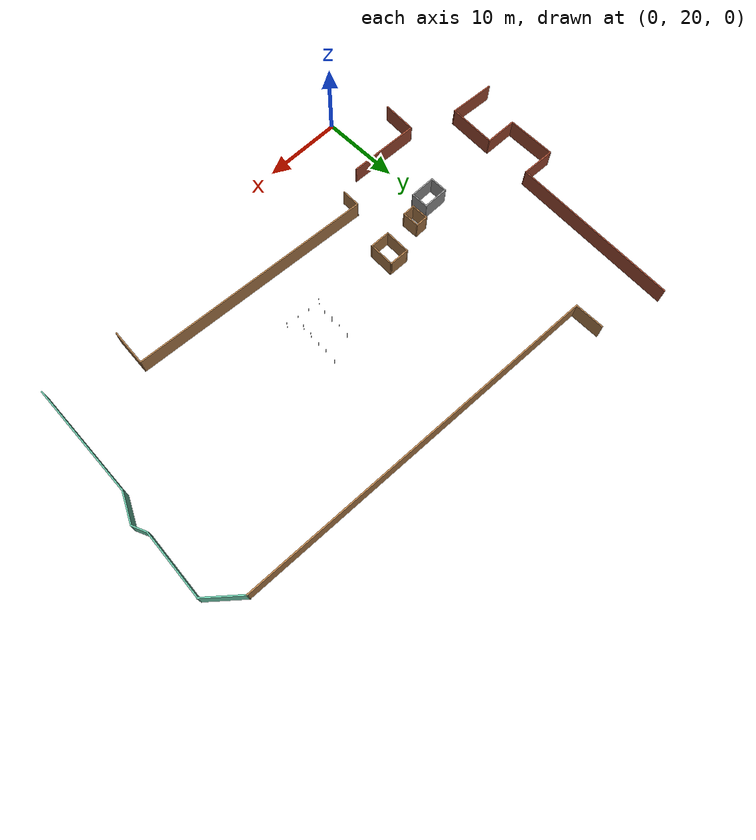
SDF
<sdf version="1.4">
 <world name="default">
  <model name="pole_0">
   <static>1</static>
   <pose>18.3 37.7 0.0 0.0 0.0 0.0</pose>
   <link name="link">
    <inertial>
     <mass>1</mass>
     <inertia><ixz>0</ixz><ixx>1</ixx><ixy>0</ixy><izz>1</izz><iyy>1</iyy><iyz>0</iyz></inertia>
    </inertial>
    <collision name="collision">
     <geometry><cylinder><length>1.27</length><radius>0.025</radius></cylinder></geometry>
    </collision>
    <visual name="visual">
     <geometry><cylinder><length>1.27</length><radius>0.025</radius></cylinder></geometry>
     <material>
      <script><uri>file://media/materials/scripts/gazebo.material</uri><name>Gazebo/Grey</name></script>
     </material>
    </visual>
    <velocity_decay><linear>0</linear><angular>0</angular></velocity_decay>
   </link>
  </model>
  <model name="pole_1">
   <static>1</static>
   <pose>21.3 37.5 0.0 0.0 0.0 0.0</pose>
   <link name="link">
    <inertial>
     <mass>1</mass>
     <inertia><ixz>0</ixz><ixx>1</ixx><ixy>0</ixy><izz>1</izz><iyy>1</iyy><iyz>0</iyz></inertia>
    </inertial>
    <collision name="collision">
     <geometry><cylinder><length>1.27</length><radius>0.025</radius></cylinder></geometry>
    </collision>
    <visual name="visual">
     <geometry><cylinder><length>1.27</length><radius>0.025</radius></cylinder></geometry>
     <material>
      <script><uri>file://media/materials/scripts/gazebo.material</uri><name>Gazebo/Grey</name></script>
     </material>
    </visual>
    <velocity_decay><linear>0</linear><angular>0</angular></velocity_decay>
   </link>
  </model>
  <model name="pole_9">
   <static>1</static>
   <pose>18.4 39.0 0.0 0.0 0.0 0.0</pose>
   <link name="link">
    <inertial>
     <mass>1</mass>
     <inertia><ixz>0</ixz><ixx>1</ixx><ixy>0</ixy><izz>1</izz><iyy>1</iyy><iyz>0</iyz></inertia>
    </inertial>
    <collision name="collision">
     <geometry><cylinder><length>1.27</length><radius>0.025</radius></cylinder></geometry>
    </collision>
    <visual name="visual">
     <geometry><cylinder><length>1.27</length><radius>0.025</radius></cylinder></geometry>
     <material>
      <script><uri>file://media/materials/scripts/gazebo.material</uri><name>Gazebo/Grey</name></script>
     </material>
    </visual>
    <velocity_decay><linear>0</linear><angular>0</angular></velocity_decay>
   </link>
  </model>
  <model name="pole_10">
   <static>1</static>
   <pose>21.4 38.8 0.0 0.0 0.0 0.0</pose>
   <link name="link">
    <inertial>
     <mass>1</mass>
     <inertia><ixz>0</ixz><ixx>1</ixx><ixy>0</ixy><izz>1</izz><iyy>1</iyy><iyz>0</iyz></inertia>
    </inertial>
    <collision name="collision">
     <geometry><cylinder><length>1.27</length><radius>0.025</radius></cylinder></geometry>
    </collision>
    <visual name="visual">
     <geometry><cylinder><length>1.27</length><radius>0.025</radius></cylinder></geometry>
     <material>
      <script><uri>file://media/materials/scripts/gazebo.material</uri><name>Gazebo/Grey</name></script>
     </material>
    </visual>
    <velocity_decay><linear>0</linear><angular>0</angular></velocity_decay>
   </link>
  </model>
  <model name="pole_18">
   <static>1</static>
   <pose>18.5 40.3 0.0 0.0 0.0 0.0</pose>
   <link name="link">
    <inertial>
     <mass>1</mass>
     <inertia><ixz>0</ixz><ixx>1</ixx><ixy>0</ixy><izz>1</izz><iyy>1</iyy><iyz>0</iyz></inertia>
    </inertial>
    <collision name="collision">
     <geometry><cylinder><length>1.27</length><radius>0.025</radius></cylinder></geometry>
    </collision>
    <visual name="visual">
     <geometry><cylinder><length>1.27</length><radius>0.025</radius></cylinder></geometry>
     <material>
      <script><uri>file://media/materials/scripts/gazebo.material</uri><name>Gazebo/Grey</name></script>
     </material>
    </visual>
    <velocity_decay><linear>0</linear><angular>0</angular></velocity_decay>
   </link>
  </model>
  <model name="pole_19">
   <static>1</static>
   <pose>21.5 40.1 0.0 0.0 0.0 0.0</pose>
   <link name="link">
    <inertial>
     <mass>1</mass>
     <inertia><ixz>0</ixz><ixx>1</ixx><ixy>0</ixy><izz>1</izz><iyy>1</iyy><iyz>0</iyz></inertia>
    </inertial>
    <collision name="collision">
     <geometry><cylinder><length>1.27</length><radius>0.025</radius></cylinder></geometry>
    </collision>
    <visual name="visual">
     <geometry><cylinder><length>1.27</length><radius>0.025</radius></cylinder></geometry>
     <material>
      <script><uri>file://media/materials/scripts/gazebo.material</uri><name>Gazebo/Grey</name></script>
     </material>
    </visual>
    <velocity_decay><linear>0</linear><angular>0</angular></velocity_decay>
   </link>
  </model>
  <model name="pole_27">
   <static>1</static>
   <pose>18.6 41.6 0.0 0.0 0.0 0.0</pose>
   <link name="link">
    <inertial>
     <mass>1</mass>
     <inertia><ixz>0</ixz><ixx>1</ixx><ixy>0</ixy><izz>1</izz><iyy>1</iyy><iyz>0</iyz></inertia>
    </inertial>
    <collision name="collision">
     <geometry><cylinder><length>1.27</length><radius>0.025</radius></cylinder></geometry>
    </collision>
    <visual name="visual">
     <geometry><cylinder><length>1.27</length><radius>0.025</radius></cylinder></geometry>
     <material>
      <script><uri>file://media/materials/scripts/gazebo.material</uri><name>Gazebo/Grey</name></script>
     </material>
    </visual>
    <velocity_decay><linear>0</linear><angular>0</angular></velocity_decay>
   </link>
  </model>
  <model name="pole_28">
   <static>1</static>
   <pose>21.6 41.4 0.0 0.0 0.0 0.0</pose>
   <link name="link">
    <inertial>
     <mass>1</mass>
     <inertia><ixz>0</ixz><ixx>1</ixx><ixy>0</ixy><izz>1</izz><iyy>1</iyy><iyz>0</iyz></inertia>
    </inertial>
    <collision name="collision">
     <geometry><cylinder><length>1.27</length><radius>0.025</radius></cylinder></geometry>
    </collision>
    <visual name="visual">
     <geometry><cylinder><length>1.27</length><radius>0.025</radius></cylinder></geometry>
     <material>
      <script><uri>file://media/materials/scripts/gazebo.material</uri><name>Gazebo/Grey</name></script>
     </material>
    </visual>
    <velocity_decay><linear>0</linear><angular>0</angular></velocity_decay>
   </link>
  </model>
  <model name="pole_36">
   <static>1</static>
   <pose>18.7 43.0 0.0 0.0 0.0 0.0</pose>
   <link name="link">
    <inertial>
     <mass>1</mass>
     <inertia><ixz>0</ixz><ixx>1</ixx><ixy>0</ixy><izz>1</izz><iyy>1</iyy><iyz>0</iyz></inertia>
    </inertial>
    <collision name="collision">
     <geometry><cylinder><length>1.27</length><radius>0.025</radius></cylinder></geometry>
    </collision>
    <visual name="visual">
     <geometry><cylinder><length>1.27</length><radius>0.025</radius></cylinder></geometry>
     <material>
      <script><uri>file://media/materials/scripts/gazebo.material</uri><name>Gazebo/Grey</name></script>
     </material>
    </visual>
    <velocity_decay><linear>0</linear><angular>0</angular></velocity_decay>
   </link>
  </model>
  <model name="pole_37">
   <static>1</static>
   <pose>21.7 42.8 0.0 0.0 0.0 0.0</pose>
   <link name="link">
    <inertial>
     <mass>1</mass>
     <inertia><ixz>0</ixz><ixx>1</ixx><ixy>0</ixy><izz>1</izz><iyy>1</iyy><iyz>0</iyz></inertia>
    </inertial>
    <collision name="collision">
     <geometry><cylinder><length>1.27</length><radius>0.025</radius></cylinder></geometry>
    </collision>
    <visual name="visual">
     <geometry><cylinder><length>1.27</length><radius>0.025</radius></cylinder></geometry>
     <material>
      <script><uri>file://media/materials/scripts/gazebo.material</uri><name>Gazebo/Grey</name></script>
     </material>
    </visual>
    <velocity_decay><linear>0</linear><angular>0</angular></velocity_decay>
   </link>
  </model>
  <model name="arch_0">
   <static>1</static>
   <pose>17.9 36.4 0.0 0.0 0.0 0.0</pose>
   <link name="link">
    <inertial>
     <mass>1</mass>
     <inertia><ixz>0</ixz><ixx>1</ixx><ixy>0</ixy><izz>1</izz><iyy>1</iyy><iyz>0</iyz></inertia>
    </inertial>
    <collision name="collision">
     <geometry><cylinder><length>1.37</length><radius>0.0175</radius></cylinder></geometry>
    </collision>
    <visual name="visual">
     <geometry><cylinder><length>1.37</length><radius>0.0175</radius></cylinder></geometry>
     <material>
      <script><uri>file://media/materials/scripts/gazebo.material</uri><name>Gazebo/Grey</name></script>
     </material>
    </visual>
    <velocity_decay><linear>0</linear><angular>0</angular></velocity_decay>
   </link>
  </model>
  <model name="arch_3">
   <static>1</static>
   <pose>19.4 36.3 0.0 0.0 0.0 0.0</pose>
   <link name="link">
    <inertial>
     <mass>1</mass>
     <inertia><ixz>0</ixz><ixx>1</ixx><ixy>0</ixy><izz>1</izz><iyy>1</iyy><iyz>0</iyz></inertia>
    </inertial>
    <collision name="collision">
     <geometry><cylinder><length>1.37</length><radius>0.0175</radius></cylinder></geometry>
    </collision>
    <visual name="visual">
     <geometry><cylinder><length>1.37</length><radius>0.0175</radius></cylinder></geometry>
     <material>
      <script><uri>file://media/materials/scripts/gazebo.material</uri><name>Gazebo/Grey</name></script>
     </material>
    </visual>
    <velocity_decay><linear>0</linear><angular>0</angular></velocity_decay>
   </link>
  </model>
  <model name="arch_6">
   <static>1</static>
   <pose>20.9 36.2 0.0 0.0 0.0 0.0</pose>
   <link name="link">
    <inertial>
     <mass>1</mass>
     <inertia><ixz>0</ixz><ixx>1</ixx><ixy>0</ixy><izz>1</izz><iyy>1</iyy><iyz>0</iyz></inertia>
    </inertial>
    <collision name="collision">
     <geometry><cylinder><length>1.37</length><radius>0.0175</radius></cylinder></geometry>
    </collision>
    <visual name="visual">
     <geometry><cylinder><length>1.37</length><radius>0.0175</radius></cylinder></geometry>
     <material>
      <script><uri>file://media/materials/scripts/gazebo.material</uri><name>Gazebo/Grey</name></script>
     </material>
    </visual>
    <velocity_decay><linear>0</linear><angular>0</angular></velocity_decay>
   </link>
  </model>
  <model name="arch_9">
   <static>1</static>
   <pose>22.4 36.0 0.0 0.0 0.0 0.0</pose>
   <link name="link">
    <inertial>
     <mass>1</mass>
     <inertia><ixz>0</ixz><ixx>1</ixx><ixy>0</ixy><izz>1</izz><iyy>1</iyy><iyz>0</iyz></inertia>
    </inertial>
    <collision name="collision">
     <geometry><cylinder><length>1.37</length><radius>0.0175</radius></cylinder></geometry>
    </collision>
    <visual name="visual">
     <geometry><cylinder><length>1.37</length><radius>0.0175</radius></cylinder></geometry>
     <material>
      <script><uri>file://media/materials/scripts/gazebo.material</uri><name>Gazebo/Grey</name></script>
     </material>
    </visual>
    <velocity_decay><linear>0</linear><angular>0</angular></velocity_decay>
   </link>
  </model>
  <model name="riseholme_real_map_part">
   <static>1</static>
   <pose>15.76 43.63 0 0 -0 0</pose>
   <link name="Wall_0">
    <collision name="Wall_0_Collision">
     <geometry><box><size>21.0554 0.15 2.5</size></box></geometry>
     <pose>0 0 1.25 0 -0 0</pose>
    </collision>
    <visual name="Wall_0_Visual">
     <geometry><box><size>21.0554 0.15 2.5</size></box></geometry>
     <meta><layer>0</layer></meta>
     <material>
      <script><uri>file://media/materials/scripts/gazebo.material</uri><name>Gazebo/Bricks</name></script>
      <ambient>1 1 1 1</ambient>
     </material>
     <pose>0 0 1.25 0 -0 0</pose>
    </visual>
    <pose>-25.311 9.07614 0 0 -0 -1.63226</pose>
   </link>
   <link name="Wall_1">
    <collision name="Wall_1_Collision">
     <geometry><box><size>4.32868 0.15 2.5</size></box></geometry>
     <pose>0 0 1.25 0 -0 0</pose>
    </collision>
    <visual name="Wall_1_Visual">
     <geometry><box><size>4.32868 0.15 2.5</size></box></geometry>
     <meta><layer>0</layer></meta>
     <material>
      <script><uri>file://media/materials/scripts/gazebo.material</uri><name>Gazebo/Bricks</name></script>
      <ambient>1 1 1 1</ambient>
     </material>
     <pose>0 0 1.25 0 -0 0</pose>
    </visual>
    <pose>-28.0397 -1.24984 0 0 -0 3.09036</pose>
   </link>
   <link name="Wall_11">
    <collision name="Wall_11_Collision">
     <geometry><box><size>3.68612 0.15 2.5</size></box></geometry>
     <pose>0 0 1.25 0 -0 0</pose>
    </collision>
    <visual name="Wall_11_Visual">
     <geometry><box><size>3.68612 0.15 2.5</size></box></geometry>
     <meta><layer>0</layer></meta>
     <material>
      <script><uri>file://media/materials/scripts/gazebo.material</uri><name>Gazebo/Wood</name></script>
      <ambient>0.760784 0.662745 0.627451 1</ambient>
     </material>
     <pose>0 0 1.25 0 -0 0</pose>
    </visual>
    <pose>-16.4557 15.6167 0 0 -0 -1.58409</pose>
   </link>
   <link name="Wall_12">
    <collision name="Wall_12_Collision">
     <geometry><box><size>45.5446 0.15 2.5</size></box></geometry>
     <pose>0 0 1.25 0 -0 0</pose>
    </collision>
    <visual name="Wall_12_Visual">
     <geometry><box><size>45.5446 0.15 2.5</size></box></geometry>
     <meta><layer>0</layer></meta>
     <material>
      <script><uri>file://media/materials/scripts/gazebo.material</uri><name>Gazebo/Wood</name></script>
      <ambient>1 1 1 1</ambient>
     </material>
     <pose>0 0 1.25 0 -0 0</pose>
    </visual>
    <pose>6.17784 12.4997 0 0 -0 -0.05947</pose>
   </link>
   <link name="Wall_13">
    <collision name="Wall_13_Collision">
     <geometry><box><size>4.76315 0.15 2.5</size></box></geometry>
     <pose>0 0 1.25 0 -0 0</pose>
    </collision>
    <visual name="Wall_13_Visual">
     <geometry><box><size>4.76315 0.15 2.5</size></box></geometry>
     <meta><layer>0</layer></meta>
     <material>
      <script><uri>file://media/materials/scripts/gazebo.material</uri><name>Gazebo/Grey</name></script>
      <ambient>0.435294 0.796078 0.67451 1</ambient>
     </material>
     <pose>0 0 1.25 0 -0 0</pose>
    </visual>
    <pose>30.5563 9.61525 0 0 -0 -0.728352</pose>
   </link>
   <link name="Wall_14">
    <collision name="Wall_14_Collision">
     <geometry><box><size>8.26132 0.15 2.5</size></box></geometry>
     <pose>0 0 1.25 0 -0 0</pose>
    </collision>
    <visual name="Wall_14_Visual">
     <geometry><box><size>8.26132 0.15 2.5</size></box></geometry>
     <meta><layer>0</layer></meta>
     <material>
      <script><uri>file://media/materials/scripts/gazebo.material</uri><name>Gazebo/Grey</name></script>
      <ambient>0.435294 0.796078 0.67451 1</ambient>
     </material>
     <pose>0 0 1.25 0 -0 0</pose>
    </visual>
    <pose>32.0218 4.03225 0 0 -0 -1.63396</pose>
   </link>
   <link name="Wall_15">
    <collision name="Wall_15_Collision">
     <geometry><box><size>1.87891 0.15 2.5</size></box></geometry>
     <pose>0 0 1.25 0 -0 0</pose>
    </collision>
    <visual name="Wall_15_Visual">
     <geometry><box><size>1.87891 0.15 2.5</size></box></geometry>
     <meta><layer>0</layer></meta>
     <material>
      <script><uri>file://media/materials/scripts/gazebo.material</uri><name>Gazebo/Grey</name></script>
      <ambient>0.435294 0.796078 0.67451 1</ambient>
     </material>
     <pose>0 0 1.25 0 -0 0</pose>
    </visual>
    <pose>32.1148 -0.806251 0 0 -0 -1.15527</pose>
   </link>
   <link name="Wall_16">
    <collision name="Wall_16_Collision">
     <geometry><box><size>3.79256 0.15 2.5</size></box></geometry>
     <pose>0 0 1.25 0 -0 0</pose>
    </collision>
    <visual name="Wall_16_Visual">
     <geometry><box><size>3.79256 0.15 2.5</size></box></geometry>
     <meta><layer>0</layer></meta>
     <material>
      <script><uri>file://media/materials/scripts/gazebo.material</uri><name>Gazebo/Grey</name></script>
      <ambient>0.435294 0.796078 0.67451 1</ambient>
     </material>
     <pose>0 0 1.25 0 -0 0</pose>
    </visual>
    <pose>31.6963 -3.24875 0 0 -0 -2.00583</pose>
   </link>
   <link name="Wall_17">
    <collision name="Wall_17_Collision">
     <geometry><box><size>14.2095 0.15 2.5</size></box></geometry>
     <pose>0 0 1.25 0 -0 0</pose>
    </collision>
    <visual name="Wall_17_Visual">
     <geometry><box><size>14.2095 0.15 2.5</size></box></geometry>
     <meta><layer>0</layer></meta>
     <material>
      <script><uri>file://media/materials/scripts/gazebo.material</uri><name>Gazebo/Grey</name></script>
      <ambient>0.435294 0.796078 0.67451 1</ambient>
     </material>
     <pose>0 0 1.25 0 -0 0</pose>
    </visual>
    <pose>30.6728 -11.9253 0 0 -0 -1.60722</pose>
   </link>
   <link name="Wall_2">
    <collision name="Wall_2_Collision">
     <geometry><box><size>6.25304 0.15 2.5</size></box></geometry>
     <pose>0 0 1.25 0 -0 0</pose>
    </collision>
    <visual name="Wall_2_Visual">
     <geometry><box><size>6.25304 0.15 2.5</size></box></geometry>
     <meta><layer>0</layer></meta>
     <material>
      <script><uri>file://media/materials/scripts/gazebo.material</uri><name>Gazebo/Bricks</name></script>
      <ambient>1 1 1 1</ambient>
     </material>
     <pose>0 0 1.25 0 -0 0</pose>
    </visual>
    <pose>-30.2333 -4.19248 0 0 -0 -1.60587</pose>
   </link>
   <link name="Wall_20">
    <collision name="Wall_20_Collision">
     <geometry><box><size>4.62501 0.15 2.5</size></box></geometry>
     <pose>0 0 1.25 0 -0 0</pose>
    </collision>
    <visual name="Wall_20_Visual">
     <geometry><box><size>4.62501 0.15 2.5</size></box></geometry>
     <meta><layer>0</layer></meta>
     <material>
      <script><uri>file://media/materials/scripts/gazebo.material</uri><name>Gazebo/Wood</name></script>
      <ambient>1 1 1 1</ambient>
     </material>
     <pose>0 0 1.25 0 -0 0</pose>
    </visual>
    <pose>20.9727 -16.5778 0 0 -0 1.50838</pose>
   </link>
   <link name="Wall_21">
    <collision name="Wall_21_Collision">
     <geometry><box><size>30.1911 0.15 2.5</size></box></geometry>
     <pose>0 0 1.25 0 -0 0</pose>
    </collision>
    <visual name="Wall_21_Visual">
     <geometry><box><size>30.1911 0.15 2.5</size></box></geometry>
     <meta><layer>0</layer></meta>
     <material>
      <script><uri>file://media/materials/scripts/gazebo.material</uri><name>Gazebo/Wood</name></script>
      <ambient>1 1 1 1</ambient>
     </material>
     <pose>0 0 1.25 0 -0 0</pose>
    </visual>
    <pose>6.13155 -13.2513 0 0 -0 3.06874</pose>
   </link>
   <link name="Wall_22">
    <collision name="Wall_22_Collision">
     <geometry><box><size>2.43157 0.15 2.5</size></box></geometry>
     <pose>0 0 1.25 0 -0 0</pose>
    </collision>
    <visual name="Wall_22_Visual">
     <geometry><box><size>2.43157 0.15 2.5</size></box></geometry>
     <meta><layer>0</layer></meta>
     <material>
      <script><uri>file://media/materials/scripts/gazebo.material</uri><name>Gazebo/Wood</name></script>
      <ambient>1 1 1 1</ambient>
     </material>
     <pose>0 0 1.25 0 -0 0</pose>
    </visual>
    <pose>-8.89568 -13.2978 0 0 -0 -1.61159</pose>
   </link>
   <link name="Wall_24">
    <collision name="Wall_24_Collision">
     <geometry><box><size>9.04386 0.15 2.5</size></box></geometry>
     <pose>0 0 1.25 0 -0 0</pose>
    </collision>
    <visual name="Wall_24_Visual">
     <geometry><box><size>9.04386 0.15 2.5</size></box></geometry>
     <meta><layer>0</layer></meta>
     <material>
      <script><uri>file://media/materials/scripts/gazebo.material</uri><name>Gazebo/Bricks</name></script>
      <ambient>1 1 1 1</ambient>
     </material>
     <pose>0 0 1.25 0 -0 0</pose>
    </visual>
    <pose>-16.6419 -15.5077 0 0 -0 3.09973</pose>
   </link>
   <link name="Wall_25">
    <collision name="Wall_25_Collision">
     <geometry><box><size>4.34645 0.15 2.5</size></box></geometry>
     <pose>0 0 1.25 0 -0 0</pose>
    </collision>
    <visual name="Wall_25_Visual">
     <geometry><box><size>4.34645 0.15 2.5</size></box></geometry>
     <meta><layer>0</layer></meta>
     <material>
      <script><uri>file://media/materials/scripts/gazebo.material</uri><name>Gazebo/Bricks</name></script>
      <ambient>1 1 1 1</ambient>
     </material>
     <pose>0 0 1.25 0 -0 0</pose>
    </visual>
    <pose>-21.2245 -17.4152 0 0 -0 -1.63736</pose>
   </link>
   <link name="Wall_27">
    <collision name="Wall_27_Collision">
     <geometry><box><size>2.53305 0.15 2.5</size></box></geometry>
     <pose>0 0 1.25 0 -0 0</pose>
    </collision>
    <visual name="Wall_27_Visual">
     <geometry><box><size>2.53305 0.15 2.5</size></box></geometry>
     <meta><layer>0</layer></meta>
     <material>
      <script><uri>file://media/materials/scripts/gazebo.material</uri><name>Gazebo/Wood</name></script>
      <ambient>1 1 1 1</ambient>
     </material>
     <pose>0 0 1.25 0 -0 0</pose>
    </visual>
    <pose>-7.18321 -3.93137 0 0 -0 -0.031735</pose>
   </link>
   <link name="Wall_28">
    <collision name="Wall_28_Collision">
     <geometry><box><size>3.15403 0.15 2.5</size></box></geometry>
     <pose>0 0 1.25 0 -0 0</pose>
    </collision>
    <visual name="Wall_28_Visual">
     <geometry><box><size>3.15403 0.15 2.5</size></box></geometry>
     <meta><layer>0</layer></meta>
     <material>
      <script><uri>file://media/materials/scripts/gazebo.material</uri><name>Gazebo/Wood</name></script>
      <ambient>1 1 1 1</ambient>
     </material>
     <pose>0 0 1.25 0 -0 0</pose>
    </visual>
    <pose>-6.049 -5.47013 0 0 -0 -1.60856</pose>
   </link>
   <link name="Wall_3">
    <collision name="Wall_3_Collision">
     <geometry><box><size>4.14564 0.15 2.5</size></box></geometry>
     <pose>0 0 1.25 0 -0 0</pose>
    </collision>
    <visual name="Wall_3_Visual">
     <geometry><box><size>4.14564 0.15 2.5</size></box></geometry>
     <meta><layer>0</layer></meta>
     <material>
      <script><uri>file://media/materials/scripts/gazebo.material</uri><name>Gazebo/Bricks</name></script>
      <ambient>1 1 1 1</ambient>
     </material>
     <pose>0 0 1.25 0 -0 0</pose>
    </visual>
    <pose>-28.3434 -7.30486 0 0 -0 -0.031408</pose>
   </link>
   <link name="Wall_30">
    <collision name="Wall_30_Collision">
     <geometry><box><size>3.23744 0.15 2.5</size></box></geometry>
     <pose>0 0 1.25 0 -0 0</pose>
    </collision>
    <visual name="Wall_30_Visual">
     <geometry><box><size>3.23744 0.15 2.5</size></box></geometry>
     <meta><layer>0</layer></meta>
     <material>
      <script><uri>file://media/materials/scripts/gazebo.material</uri><name>Gazebo/Wood</name></script>
      <ambient>1 1 1 1</ambient>
     </material>
     <pose>0 0 1.25 0 -0 0</pose>
    </visual>
    <pose>-8.49512 -5.42854 0 0 -0 1.5316</pose>
   </link>
   <link name="Wall_33">
    <collision name="Wall_33_Collision">
     <geometry><box><size>1.6056 0.15 2.5</size></box></geometry>
     <pose>0 0 1.25 0 -0 0</pose>
    </collision>
    <visual name="Wall_33_Visual">
     <geometry><box><size>1.6056 0.15 2.5</size></box></geometry>
     <meta><layer>0</layer></meta>
     <material>
      <script><uri>file://media/materials/scripts/gazebo.material</uri><name>Gazebo/Wood</name></script>
      <ambient>0.921569 0.807843 0.615686 1</ambient>
     </material>
     <pose>0 0 1.25 0 -0 0</pose>
    </visual>
    <pose>-12.4047 -5.35675 0 0 -0 -0.004811</pose>
   </link>
   <link name="Wall_34">
    <collision name="Wall_34_Collision">
     <geometry><box><size>2.21049 0.15 2.5</size></box></geometry>
     <pose>0 0 1.25 0 -0 0</pose>
    </collision>
    <visual name="Wall_34_Visual">
     <geometry><box><size>2.21049 0.15 2.5</size></box></geometry>
     <meta><layer>0</layer></meta>
     <material>
      <script><uri>file://media/materials/scripts/gazebo.material</uri><name>Gazebo/Wood</name></script>
      <ambient>0.921569 0.807843 0.615686 1</ambient>
     </material>
     <pose>0 0 1.25 0 -0 0</pose>
    </visual>
    <pose>-11.6772 -6.39075 0 0 -0 -1.5708</pose>
   </link>
   <link name="Wall_35">
    <collision name="Wall_35_Collision">
     <geometry><box><size>1.64339 0.15 2.5</size></box></geometry>
     <pose>0 0 1.25 0 -0 0</pose>
    </collision>
    <visual name="Wall_35_Visual">
     <geometry><box><size>1.64339 0.15 2.5</size></box></geometry>
     <meta><layer>0</layer></meta>
     <material>
      <script><uri>file://media/materials/scripts/gazebo.material</uri><name>Gazebo/Wood</name></script>
      <ambient>0.921569 0.807843 0.615686 1</ambient>
     </material>
     <pose>0 0 1.25 0 -0 0</pose>
    </visual>
    <pose>-12.4237 -7.42325 0 0 -0 -3.13891</pose>
   </link>
   <link name="Wall_36">
    <collision name="Wall_36_Collision">
     <geometry><box><size>2.22952 0.15 2.5</size></box></geometry>
     <pose>0 0 1.25 0 -0 0</pose>
    </collision>
    <visual name="Wall_36_Visual">
     <geometry><box><size>2.22952 0.15 2.5</size></box></geometry>
     <meta><layer>0</layer></meta>
     <material>
      <script><uri>file://media/materials/scripts/gazebo.material</uri><name>Gazebo/Wood</name></script>
      <ambient>0.921569 0.807843 0.615686 1</ambient>
     </material>
     <pose>0 0 1.25 0 -0 0</pose>
    </visual>
    <pose>-13.1592 -6.38525 0 0 -0 1.56022</pose>
   </link>
   <link name="Wall_41">
    <collision name="Wall_41_Collision">
     <geometry><box><size>2.59291 0.15 2.5</size></box></geometry>
     <pose>0 0 1.25 0 -0 0</pose>
    </collision>
    <visual name="Wall_41_Visual">
     <geometry><box><size>2.59291 0.15 2.5</size></box></geometry>
     <meta><layer>0</layer></meta>
     <material>
      <script><uri>file://media/materials/scripts/gazebo.material</uri><name>Gazebo/Wood</name></script>
      <ambient>1 1 1 1</ambient>
     </material>
     <pose>0 0 1.25 0 -0 0</pose>
    </visual>
    <pose>-7.32965 -7.03675 0 0 -0 -0.033989</pose>
   </link>
   <link name="Wall_46">
    <collision name="Wall_46_Collision">
     <geometry><box><size>3.22104 0.15 2.5</size></box></geometry>
     <pose>0 0 1.25 0 -0 0</pose>
    </collision>
    <visual name="Wall_46_Visual">
     <geometry><box><size>3.22104 0.15 2.5</size></box></geometry>
     <meta><layer>0</layer></meta>
     <material>
      <script><uri>file://media/materials/scripts/gazebo.material</uri><name>Gazebo/Grey</name></script>
      <ambient>1 1 1 1</ambient>
     </material>
     <pose>0 0 1.25 0 -0 0</pose>
    </visual>
    <pose>-15.7967 -6.38075 0 0 -0 -0.018559</pose>
   </link>
   <link name="Wall_47">
    <collision name="Wall_47_Collision">
     <geometry><box><size>2.26628 0.15 2.5</size></box></geometry>
     <pose>0 0 1.25 0 -0 0</pose>
    </collision>
    <visual name="Wall_47_Visual">
     <geometry><box><size>2.26628 0.15 2.5</size></box></geometry>
     <meta><layer>0</layer></meta>
     <material>
      <script><uri>file://media/materials/scripts/gazebo.material</uri><name>Gazebo/Grey</name></script>
      <ambient>1 1 1 1</ambient>
     </material>
     <pose>0 0 1.25 0 -0 0</pose>
    </visual>
    <pose>-14.2787 -7.46725 0 0 -0 -1.58734</pose>
   </link>
   <link name="Wall_48">
    <collision name="Wall_48_Collision">
     <geometry><box><size>3.27819 0.15 2.5</size></box></geometry>
     <pose>0 0 1.25 0 -0 0</pose>
    </collision>
    <visual name="Wall_48_Visual">
     <geometry><box><size>3.27819 0.15 2.5</size></box></geometry>
     <meta><layer>0</layer></meta>
     <material>
      <script><uri>file://media/materials/scripts/gazebo.material</uri><name>Gazebo/Grey</name></script>
      <ambient>1 1 1 1</ambient>
     </material>
     <pose>0 0 1.25 0 -0 0</pose>
    </visual>
    <pose>-15.8602 -8.50525 0 0 -0 3.12881</pose>
   </link>
   <link name="Wall_49">
    <collision name="Wall_49_Collision">
     <geometry><box><size>2.278 0.15 2.5</size></box></geometry>
     <pose>0 0 1.25 0 -0 0</pose>
    </collision>
    <visual name="Wall_49_Visual">
     <geometry><box><size>2.278 0.15 2.5</size></box></geometry>
     <meta><layer>0</layer></meta>
     <material>
      <script><uri>file://media/materials/scripts/gazebo.material</uri><name>Gazebo/Grey</name></script>
      <ambient>1 1 1 1</ambient>
     </material>
     <pose>0 0 1.25 0 -0 0</pose>
    </visual>
    <pose>-17.4012 -7.42175 0 0 -0 1.54917</pose>
   </link>
   <link name="Wall_7">
    <collision name="Wall_7_Collision">
     <geometry><box><size>5.97739 0.15 2.5</size></box></geometry>
     <pose>0 0 1.25 0 -0 0</pose>
    </collision>
    <visual name="Wall_7_Visual">
     <geometry><box><size>5.97739 0.15 2.5</size></box></geometry>
     <meta><layer>0</layer></meta>
     <material>
      <script><uri>file://media/materials/scripts/gazebo.material</uri><name>Gazebo/Bricks</name></script>
      <ambient>1 1 1 1</ambient>
     </material>
     <pose>0 0 1.25 0 -0 0</pose>
    </visual>
    <pose>-26.5282 -10.4133 0 0 -0 -1.63471</pose>
   </link>
   <link name="Wall_8">
    <collision name="Wall_8_Collision">
     <geometry><box><size>5.93414 0.15 2.5</size></box></geometry>
     <pose>0 0 1.25 0 -0 0</pose>
    </collision>
    <visual name="Wall_8_Visual">
     <geometry><box><size>5.93414 0.15 2.5</size></box></geometry>
     <meta><layer>0</layer></meta>
     <material>
      <script><uri>file://media/materials/scripts/gazebo.material</uri><name>Gazebo/Bricks</name></script>
      <ambient>1 1 1 1</ambient>
     </material>
     <pose>0 0 1.25 0 -0 0</pose>
    </visual>
    <pose>-29.5988 -13.1117 0 0 -0 3.06914</pose>
   </link>
  </model>
  <include><uri>model://sun</uri></include>
 </world>
</sdf>
